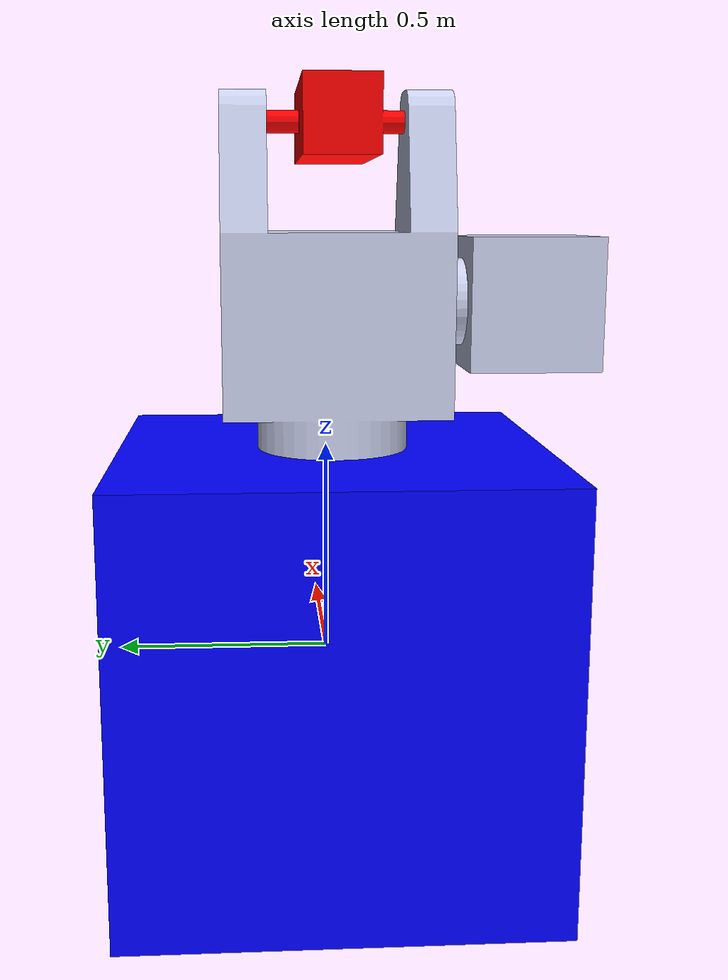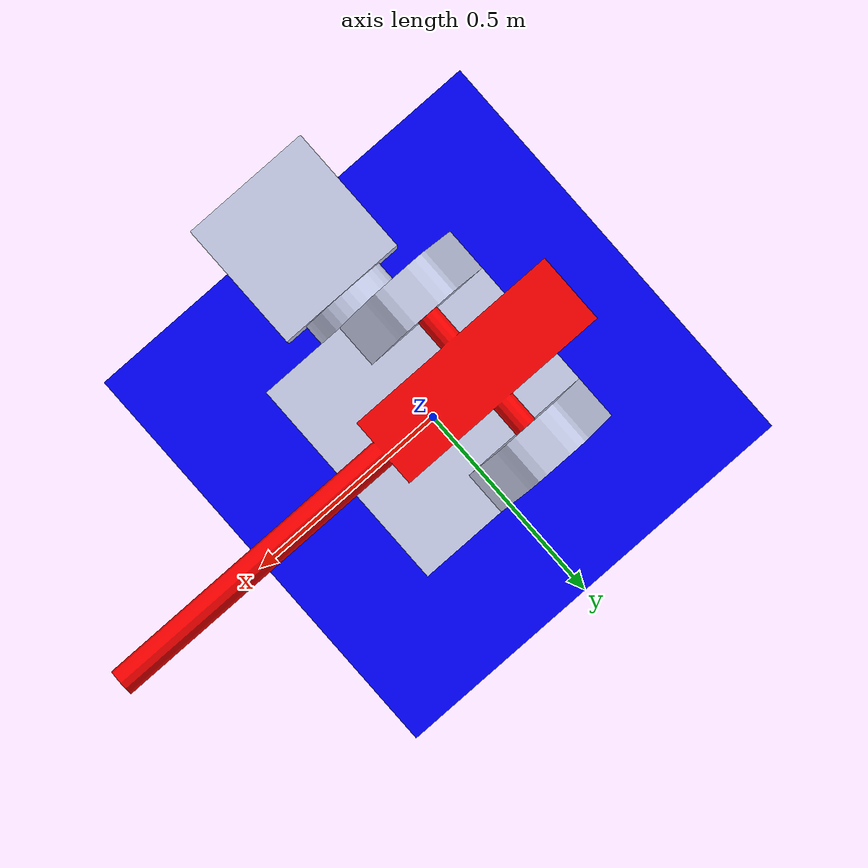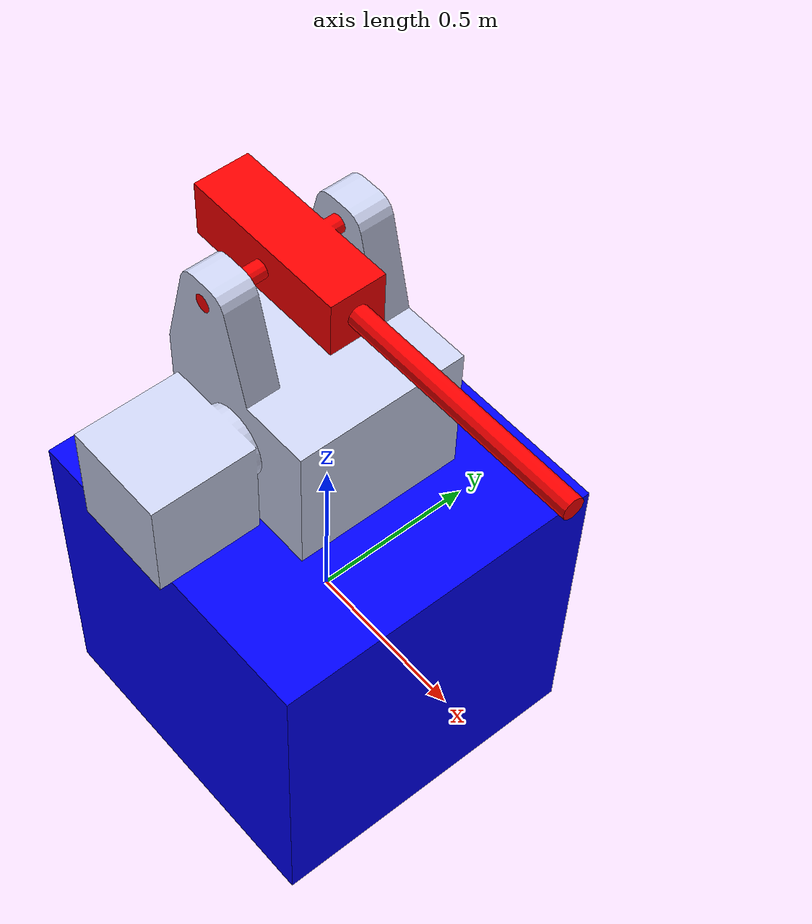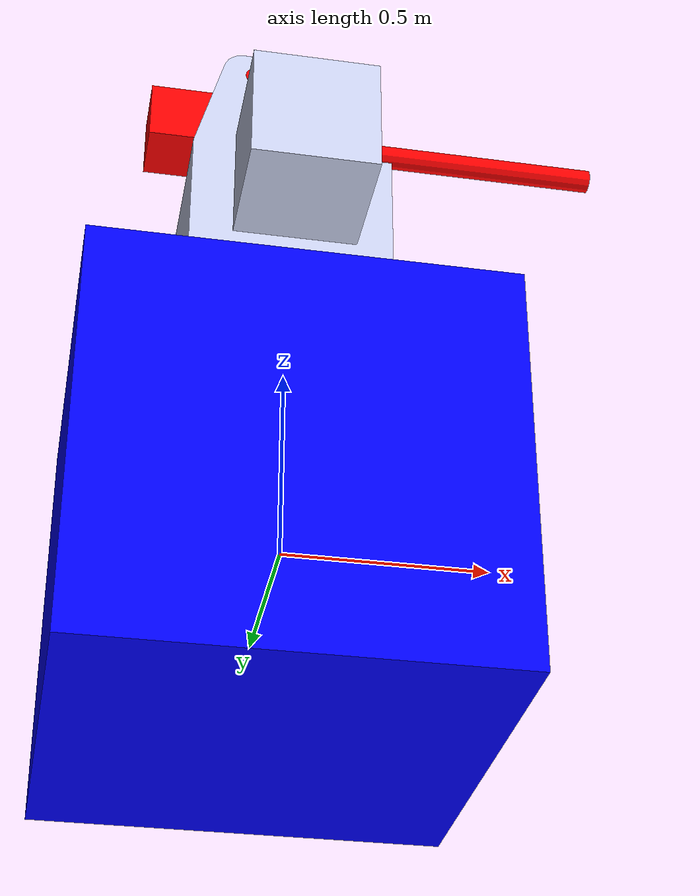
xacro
<?xml version="1.0"?>
<robot xmlns:xacro="http://www.ros.org/wiki/xacro"  name="robot">

<xacro:property name="lim_low" value="-0.524" />
<xacro:property name="lim_upper" value="1.047" />

<joint name="fixed" type="fixed">
	<parent link="world" />
	<child link="base_link" />
</joint>

<link name="world"></link>

  <link
    name="base_link">
    <inertial>
      <origin
        xyz="-0.024506 -0.014061 -0.0039595"
        rpy="0 0 0" />
      <mass
        value="995.19" />
      <inertia
        ixx="165.54"
        ixy="-9.2519E-16"
        ixz="2.8024E-16"
        iyy="165.54"
        iyz="5.2597E-16"
        izz="166.59" />
    </inertial>
    <visual>
      <origin
        xyz="0 0 0"
        rpy="0 0 0" />
      <geometry>
        <mesh
          filename="./src/urdf_example/description/meshes/base_link.stl" />
      </geometry>
      <material
        name="">
        <color
          rgba="0 0 1 1" />
      </material>
    </visual>
    <collision>
      <origin
        xyz="0 0 0.5"
        rpy="0 0 0" />
      <geometry>
        <mesh
          filename="./src/urdf_example/description/meshes/base_link.stl" />
      </geometry>
    </collision>
  </link>

  <link
    name="mount">
    <inertial>
      <origin
        xyz="-0.010107 0.34766 0.0019112"
        rpy="0 0 0" />
      <mass
        value="127.89" />
      <inertia
        ixx="5.1786"
        ixy="0.32407"
        ixz="-0.10427"
        iyy="5.0461"
        iyz="-0.16091"
        izz="5.0086" />
    </inertial>
    <visual>
      <origin
        xyz="0 0 0"
        rpy="0 0 0" />
      <geometry>
        <mesh
          filename="./src/urdf_example/description/meshes/mount.stl" />
      </geometry>
      <material
        name="">
        <color
          rgba="0.79216 0.81961 0.93333 1" />
      </material>
    </visual>
    <collision>
      <origin
        xyz="0 0 0"
        rpy="0 0 0" />
      <geometry>
        <mesh
          filename="./src/urdf_example/description/meshes/mount.stl" />
      </geometry>
    </collision>
  </link>

  <joint
    name="base_to_mount"
    type="continuous">
    <origin
      xyz="-0.024506 -0.014061 0.44834"
      rpy="1.5708 0 -0.4589" />
    <parent
      link="base_link" />
    <child
      link="mount" />
    <axis
      xyz="0 1 0" />
    <limit
      effort="10000000000000"
      velocity="0.001" />
  </joint>

  <link
    name="camera_link">
    <inertial>
      <origin
        xyz="0.13768 -5.5511E-16 0.27867"
        rpy="0 0 0" />
      <mass
        value="30.142" />
      <inertia
        ixx="0.40029"
        ixy="-4.1675E-17"
        ixz="0.010089"
        iyy="0.3953"
        iyz="4.1692E-18"
        izz="0.41572" />
    </inertial>
    <visual>
      <origin
        xyz="0 0 0"
        rpy="0 0 0" />
      <geometry>
        <mesh
          filename="./src/urdf_example/description/meshes/camera.stl" />
      </geometry>
      <material
        name="">
        <color
          rgba="0.79216 0.81961 0.93333 1" />
      </material>
    </visual>
    <collision>
      <origin
        xyz="0 0 0"
        rpy="0 0 0" />
      <geometry>
        <mesh
          filename="./src/urdf_example/description/meshes/camera.stl" />
      </geometry>
    </collision>
  </link>

  <joint
    name="mount_to_camera"
    type="revolute">
    <origin
      xyz="0.052413 0.3895 0.10608"
      rpy="-0.015232 -0.00023486 -0.030834" />
    <parent
      link="mount" />
    <child
      link="camera_link" />
    <axis
      xyz="0.44296 0 0.89654" />
    <limit
      lower="-0.5236"
      upper="1.0472"
      effort="10000000000000"
      velocity="0.01" />
  </joint>

  <link
    name="gun">
    <inertial>
      <origin
        xyz="0.062789 0.031709 -0.031022"
        rpy="0 0 0" />
      <mass
        value="15.447" />
      <inertia
        ixx="0.38276"
        ixy="-0.31489"
        ixz="0.30025"
        iyy="0.85112"
        iyz="0.15558"
        izz="0.84212" />
    </inertial>
    <visual>
      <origin
        xyz="0 0 0"
        rpy="0 0 0" />
      <geometry>
        <mesh
          filename="./src/urdf_example/description/meshes/gun.stl" />
      </geometry>
      <material
        name="">
        <color
          rgba="1 0 0 1" />
      </material>
    </visual>
    <collision>
      <origin
        xyz="0 0 0"
        rpy="0 0 0" />
      <geometry>
        <mesh
          filename="./src/urdf_example/description/meshes/gun.stl" />
      </geometry>
    </collision>
  </link>

  <joint
    name="mount_to_gun"
    type="revolute">
    <origin
      xyz="-0.089654 0.785 0.044296"
      rpy="-0.18385 -0.035362 -0.37903" />
    <parent
      link="mount" />
    <child
      link="gun" />
    <axis
      xyz="0.44296 0 0.89654" />
    <limit
      lower="-0.5236"
      upper="1.0472"
      effort="10000000000000"
      velocity="0.001" />
  </joint>

    <gazebo reference="base_link">
        <material>Gazebo/Green</material>
    </gazebo>

    <gazebo reference="mount">
        <material>Gazebo/Blue</material>
    </gazebo>

    <gazebo reference="camera_link">
        <material>Gazebo/Black</material>
    </gazebo>

    <gazebo reference="gun">
        <material>Gazebo/Red</material>
    </gazebo>

    <joint name="camera_optical_joint" type="fixed">
        <origin xyz="0 0 0" rpy="-1.571 0 -1.571" />
        <parent link="camera_link" />
        <child link="camera_link_optical" />
    </joint>

    <link name="camera_link_optical"></link>

    <gazebo reference="camera_link">
        <sensor type="camera" name="my_camera">
            <update_rate>20</update_rate>
            <visualize>true</visualize>
            <camera name="cam">
                <horizontal_fov>1.3962634</horizontal_fov>
                <image>
                    <width>640</width>
                    <height>480</height>
                    <format>R8B8G8</format>
                </image>
                <clip>
                    <near>0.02</near>
                    <far>300</far>
                </clip>
                <noise>
                    <type>gaussian</type>
                    <mean>0.0</mean>
                    <stddev>0.007</stddev>
                </noise>
            </camera>
            <plugin name="camera_controller" filename="libgazebo_ros_camera.so">
                <frame_name>camera_link_optical</frame_name>
                <min_depth>0.1</min_depth>
                <max_depth>500</max_depth>
            </plugin>
        </sensor>
    </gazebo>

    <gazebo>
        <plugin name="gazebo_ros_joint_state_publisher"
            filename="libgazebo_ros_joint_state_publisher.so">
            <update_rate>100</update_rate>
            <joint_name>base_to_mount</joint_name>
            <joint_name>mount_to_camera</joint_name>
            <joint_name>mount_to_gun</joint_name>
        </plugin>
    </gazebo>

    <gazebo>
        <plugin name="gazebo_ros_joint_pose_trajectory"
            filename="libgazebo_ros_joint_pose_trajectory.so">
            <update_rate>20</update_rate>
        </plugin>
    </gazebo>

    <ros2_control name="GazeboSystem" type="system">
      <hardware>
        <plugin>gazebo_ros2_control/GazeboSystem</plugin>
      </hardware>
      <joint name="base_to_mount">
        <command_interface name="position"/>
        <state_interface name="position"/>
        <state_interface name="velocity"/>
        <state_interface name="effort"/>
      </joint>
      <joint name="mount_to_camera">
        <command_interface name="position">
        	<param name="min">${lim_low}</param>
        	<param name="max">${lim_upper}</param>
	</command_interface>
        <state_interface name="position"/>
        <state_interface name="velocity"/>
        <state_interface name="effort"/>
      </joint>
      <joint name="mount_to_gun">
        <command_interface name="position">
        	<param name="min">${lim_low}</param>
        	<param name="max">${lim_upper}</param>
	</command_interface>
        <state_interface name="position"/>
        <state_interface name="velocity"/>
        <state_interface name="effort"/>
      </joint>
    </ros2_control>

    <gazebo>
      <plugin filename="libgazebo_ros2_control.so" name="gazebo_ros2_control">
        <parameters>$(find urdf_example)/config/controller_configuration.yaml</parameters>
      </plugin>
    </gazebo>

</robot>
